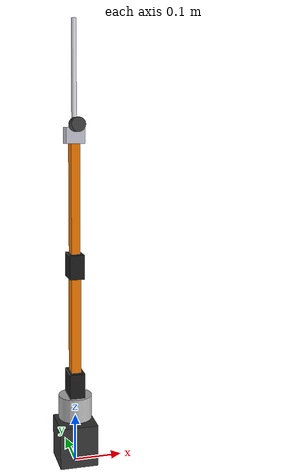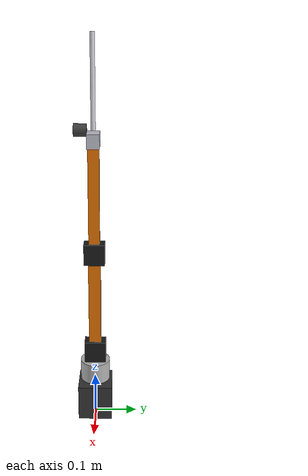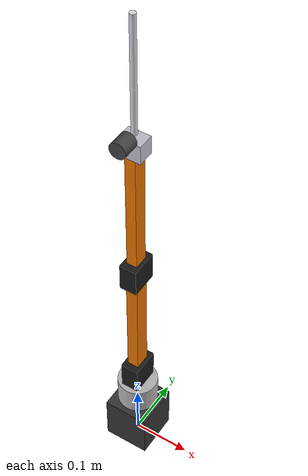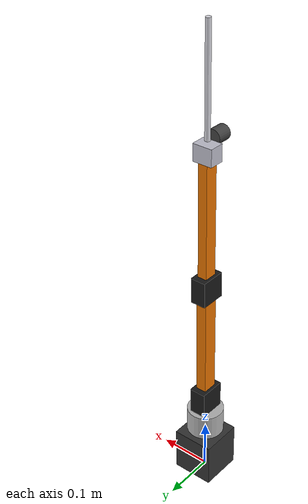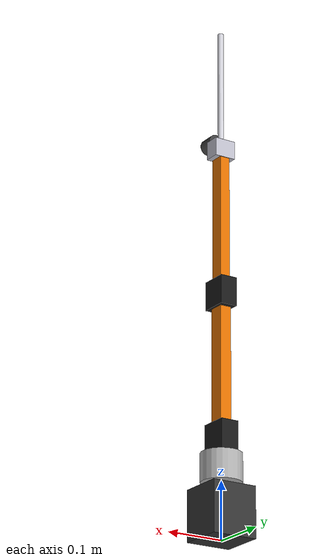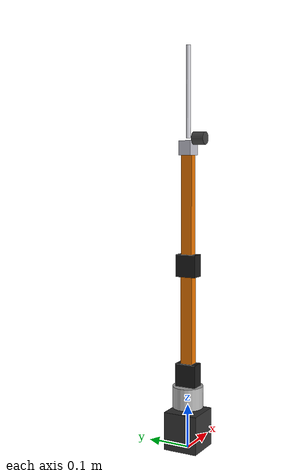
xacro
<?xml version="1.0"?>
<robot xmlns:xacro="http://www.ros.org/wiki/xacro" name="archimedes_arm">

  <!-- ═══════════════════════════════════════════════════
       Properties / Constants
  ═══════════════════════════════════════════════════ -->
  <xacro:property name="pi"          value="3.14159265358979"/>
  <xacro:property name="petg_density" value="1270"/>  <!-- kg/m³ -->

  <!-- Link heights above platform (m) -->
  <xacro:property name="base_h"      value="0.088"/>
  <xacro:property name="turret_h"    value="0.050"/>
  <xacro:property name="upper_arm_l" value="0.200"/>
  <xacro:property name="forearm_l"   value="0.220"/>
  <xacro:property name="probe_l"     value="0.200"/>

  <!-- Servo body dimensions (m) -->
  <xacro:property name="sv_w"  value="0.020"/>
  <xacro:property name="sv_d"  value="0.040"/>
  <xacro:property name="sv_h"  value="0.038"/>

  <!-- ═══════════════════════════════════════════════════
       Macro: box inertia
  ═══════════════════════════════════════════════════ -->
  <xacro:macro name="box_inertia" params="mass x y z">
    <inertial>
      <mass value="${mass}"/>
      <inertia
        ixx="${mass*(y*y+z*z)/12}"
        iyy="${mass*(x*x+z*z)/12}"
        izz="${mass*(x*x+y*y)/12}"
        ixy="0" ixz="0" iyz="0"/>
    </inertial>
  </xacro:macro>

  <xacro:macro name="cyl_inertia" params="mass r h">
    <inertial>
      <mass value="${mass}"/>
      <inertia
        ixx="${mass*(3*r*r+h*h)/12}"
        iyy="${mass*(3*r*r+h*h)/12}"
        izz="${mass*r*r/2}"
        ixy="0" ixz="0" iyz="0"/>
    </inertial>
  </xacro:macro>

  <!-- ═══════════════════════════════════════════════════
       Macro: servo visual block
  ═══════════════════════════════════════════════════ -->
  <xacro:macro name="servo_visual" params="bw bd bh color">
    <visual>
      <geometry>
        <box size="${bh} ${bw} ${bd}"/>
      </geometry>
      <material name="${color}">
        <color rgba="0.15 0.15 0.15 1.0"/>
      </material>
    </visual>
    <collision>
      <geometry>
        <box size="${bh} ${bw} ${bd}"/>
      </geometry>
    </collision>
  </xacro:macro>

  <!-- ═══════════════════════════════════════════════════
       LINK: world / platform reference
  ═══════════════════════════════════════════════════ -->
  <link name="world"/>

  <joint name="world_to_base" type="fixed">
    <parent link="world"/>
    <child  link="base_link"/>
    <origin xyz="0 0 0" rpy="0 0 0"/>
  </joint>

  <!-- ═══════════════════════════════════════════════════
       LINK 1: base_link  (base mount housing, 80×80×88mm)
  ═══════════════════════════════════════════════════ -->
  <link name="base_link">
    <!-- mass: 80×80×88mm PETG shell, ~4mm wall → estimate 180g -->
    <xacro:box_inertia mass="0.180" x="0.080" y="0.080" z="0.088"/>
    <visual>
      <origin xyz="0 0 0.044" rpy="0 0 0"/>
      <geometry>
        <box size="0.080 0.080 0.088"/>
      </geometry>
      <material name="dark_grey">
        <color rgba="0.2 0.2 0.2 1.0"/>
      </material>
    </visual>
    <collision>
      <origin xyz="0 0 0.044" rpy="0 0 0"/>
      <geometry>
        <box size="0.080 0.080 0.088"/>
      </geometry>
    </collision>
  </link>

  <!-- ═══════════════════════════════════════════════════
       JOINT J1: Yaw (base → j1_turret), MG995
  ═══════════════════════════════════════════════════ -->
  <joint name="j1_yaw" type="revolute">
    <parent link="base_link"/>
    <child  link="j1_turret"/>
    <!-- pivot at top of base housing + 8mm shaft boss -->
    <origin xyz="0 0 0.096" rpy="0 0 0"/>
    <axis xyz="0 0 1"/>
    <limit lower="${-60*pi/180}" upper="${60*pi/180}"
           effort="1.27" velocity="${180*pi/180}"/>
    <dynamics damping="0.01" friction="0.005"/>
  </joint>

  <!-- ═══════════════════════════════════════════════════
       LINK 2: j1_turret  (yaw output disk + upper arm bracket)
  ═══════════════════════════════════════════════════ -->
  <link name="j1_turret">
    <!-- disk r=35mm h=50mm ~80g -->
    <xacro:cyl_inertia mass="0.080" r="0.035" h="0.050"/>
    <visual>
      <origin xyz="0 0 0.025" rpy="0 0 0"/>
      <geometry>
        <cylinder radius="0.035" length="0.050"/>
      </geometry>
      <material name="light_grey">
        <color rgba="0.7 0.7 0.7 1.0"/>
      </material>
    </visual>
    <collision>
      <origin xyz="0 0 0.025" rpy="0 0 0"/>
      <geometry>
        <cylinder radius="0.035" length="0.050"/>
      </geometry>
    </collision>
  </link>

  <!-- ═══════════════════════════════════════════════════
       JOINT J2: Shoulder Pitch (j1_turret → upper_arm), DS3218MG
  ═══════════════════════════════════════════════════ -->
  <joint name="j2_shoulder" type="revolute">
    <parent link="j1_turret"/>
    <child  link="upper_arm"/>
    <!-- 50mm turret top = J2 pivot -->
    <origin xyz="0 0 0.050" rpy="0 0 0"/>
    <axis xyz="0 1 0"/>
    <limit lower="0" upper="${120*pi/180}"
           effort="1.96" velocity="${120*pi/180}"/>
    <dynamics damping="0.02" friction="0.01"/>
  </joint>

  <!-- ═══════════════════════════════════════════════════
       LINK 3: upper_arm  (DS3218 housing 50×30×52mm + 200mm beam)
  ═══════════════════════════════════════════════════ -->
  <link name="upper_arm">
    <!-- housing ~100g + beam ~60g = 160g -->
    <xacro:box_inertia mass="0.160" x="0.028" y="0.052" z="0.226"/>
    <!-- J2 servo housing -->
    <visual>
      <origin xyz="0 0 0.026" rpy="0 0 0"/>
      <geometry>
        <box size="0.032 0.050 0.052"/>
      </geometry>
      <material name="servo_body">
        <color rgba="0.1 0.1 0.1 1.0"/>
      </material>
    </visual>
    <!-- beam 28×20×200mm, starts at housing end -->
    <visual>
      <origin xyz="0 0 ${0.052+0.100}" rpy="0 0 0"/>
      <geometry>
        <box size="0.020 0.028 0.200"/>
      </geometry>
      <material name="arm_orange">
        <color rgba="0.9 0.45 0.0 1.0"/>
      </material>
    </visual>
    <collision>
      <origin xyz="0 0 0.113" rpy="0 0 0"/>
      <geometry>
        <box size="0.032 0.052 0.226"/>
      </geometry>
    </collision>
  </link>

  <!-- ═══════════════════════════════════════════════════
       JOINT J3: Elbow Pitch (upper_arm → forearm), MG996R
  ═══════════════════════════════════════════════════ -->
  <joint name="j3_elbow" type="revolute">
    <parent link="upper_arm"/>
    <child  link="forearm"/>
    <!-- J3 at end of upper arm (housing 52mm + beam 200mm) -->
    <origin xyz="0 0 0.252" rpy="0 0 0"/>
    <axis xyz="0 1 0"/>
    <limit lower="0" upper="${135*pi/180}"
           effort="1.27" velocity="${150*pi/180}"/>
    <dynamics damping="0.015" friction="0.008"/>
  </joint>

  <!-- ═══════════════════════════════════════════════════
       LINK 4: forearm  (MG996R housing 48×28×50mm + 220mm beam)
  ═══════════════════════════════════════════════════ -->
  <link name="forearm">
    <!-- housing ~90g + beam ~50g = 140g -->
    <xacro:box_inertia mass="0.140" x="0.025" y="0.048" z="0.270"/>
    <!-- J3 servo housing -->
    <visual>
      <origin xyz="0 0 0.025" rpy="0 0 0"/>
      <geometry>
        <box size="0.030 0.048 0.050"/>
      </geometry>
      <material name="servo_body"/>
    </visual>
    <!-- forearm beam 25×18×220mm -->
    <visual>
      <origin xyz="0 0 ${0.050+0.110}" rpy="0 0 0"/>
      <geometry>
        <box size="0.018 0.025 0.220"/>
      </geometry>
      <material name="arm_orange"/>
    </visual>
    <collision>
      <origin xyz="0 0 0.135" rpy="0 0 0"/>
      <geometry>
        <box size="0.030 0.048 0.270"/>
      </geometry>
    </collision>
  </link>

  <!-- ═══════════════════════════════════════════════════
       JOINT: forearm → probe_holder (fixed)
  ═══════════════════════════════════════════════════ -->
  <joint name="forearm_to_probe_holder" type="fixed">
    <parent link="forearm"/>
    <child  link="probe_holder"/>
    <origin xyz="0 0 0.270" rpy="0 0 0"/>
  </joint>

  <!-- ═══════════════════════════════════════════════════
       LINK 5: probe_holder  (clamp 38×28×32mm)
  ═══════════════════════════════════════════════════ -->
  <link name="probe_holder">
    <xacro:box_inertia mass="0.025" x="0.038" y="0.028" z="0.032"/>
    <visual>
      <origin xyz="0 0 0.016" rpy="0 0 0"/>
      <geometry>
        <box size="0.038 0.028 0.032"/>
      </geometry>
      <material name="clamp_silver">
        <color rgba="0.75 0.75 0.80 1.0"/>
      </material>
    </visual>
    <collision>
      <origin xyz="0 0 0.016" rpy="0 0 0"/>
      <geometry>
        <box size="0.038 0.028 0.032"/>
      </geometry>
    </collision>
  </link>

  <!-- ═══════════════════════════════════════════════════
       JOINT: probe_holder → probe (fixed)
  ═══════════════════════════════════════════════════ -->
  <joint name="probe_holder_to_probe" type="fixed">
    <parent link="probe_holder"/>
    <child  link="probe"/>
    <origin xyz="0 0 0.037" rpy="0 0 0"/>
  </joint>

  <!-- ═══════════════════════════════════════════════════
       LINK 6: probe  (10mm SS tube 180mm + 20mm cone tip)
  ═══════════════════════════════════════════════════ -->
  <link name="probe">
    <!-- stainless steel 10mm OD 7mm ID 200mm: ~65g -->
    <xacro:cyl_inertia mass="0.065" r="0.005" h="0.200"/>
    <visual>
      <origin xyz="0 0 0.100" rpy="0 0 0"/>
      <geometry>
        <cylinder radius="0.005" length="0.200"/>
      </geometry>
      <material name="stainless">
        <color rgba="0.85 0.85 0.88 1.0"/>
      </material>
    </visual>
    <collision>
      <origin xyz="0 0 0.100" rpy="0 0 0"/>
      <geometry>
        <cylinder radius="0.005" length="0.200"/>
      </geometry>
    </collision>
  </link>

  <joint name="j4_tilt" type="revolute">
    <parent link="probe_holder"/>
    <child  link="transducer_mount"/>
    <origin xyz="0 0 0.037" rpy="0 0 0"/>
    <axis   xyz="1 0 0"/>   <!-- pitch around local X -->
    <limit  lower="-0.5236" upper="0.5236"
            effort="0.18"   velocity="3.14"/>  <!-- MG90S: 1.8kg·cm@4.8V -->
    <dynamics damping="0.1" friction="0.05"/>
  </joint>

  <link name="transducer_mount">
    <xacro:cyl_inertia mass="0.124" r="0.010" h="0.028"/>
    <visual>
      <origin xyz="0 -0.028 0" rpy="1.5708 0 0"/>
      <geometry>
        <cylinder radius="0.014" length="0.028"/>
      </geometry>
      <material name="dark_grey">
        <color rgba="0.25 0.25 0.25 1.0"/>
      </material>
    </visual>
    <collision>
      <origin xyz="0 -0.028 0" rpy="1.5708 0 0"/>
      <geometry>
        <cylinder radius="0.014" length="0.028"/>
      </geometry>
    </collision>
  </link>

  <!-- ═══════════════════════════════════════════════════
       Transmission (ros_control effort interface)
  ═══════════════════════════════════════════════════ -->
  <xacro:macro name="servo_transmission" params="joint_name actuator_name">
    <transmission name="${joint_name}_trans">
      <type>transmission_interface/SimpleTransmission</type>
      <joint name="${joint_name}">
        <hardwareInterface>hardware_interface/EffortJointInterface</hardwareInterface>
      </joint>
      <actuator name="${actuator_name}">
        <hardwareInterface>hardware_interface/EffortJointInterface</hardwareInterface>
        <mechanicalReduction>1</mechanicalReduction>
      </actuator>
    </transmission>
  </xacro:macro>

  <xacro:servo_transmission joint_name="j1_yaw"      actuator_name="mg995_j1"/>
  <xacro:servo_transmission joint_name="j2_shoulder" actuator_name="ds3218_j2"/>
  <xacro:servo_transmission joint_name="j3_elbow"    actuator_name="mg996r_j3"/>
  <xacro:servo_transmission joint_name="j4_tilt"     actuator_name="mg90s_j4"/>

  <!-- ═══════════════════════════════════════════════════
       Gazebo plugins (ros_control + camera)
  ═══════════════════════════════════════════════════ -->
  <gazebo>
    <plugin name="gazebo_ros_control" filename="libgazebo_ros_control.so">
      <robotNamespace>/archimedes_arm</robotNamespace>
      <robotSimType>gazebo_ros_control/DefaultRobotHWSim</robotSimType>
    </plugin>
  </gazebo>

  <gazebo reference="base_link">
    <material>Gazebo/DarkGrey</material>
  </gazebo>
  <gazebo reference="upper_arm">
    <material>Gazebo/Orange</material>
  </gazebo>
  <gazebo reference="forearm">
    <material>Gazebo/Orange</material>
  </gazebo>
  <gazebo reference="probe">
    <material>Gazebo/Grey</material>
  </gazebo>

</robot>
